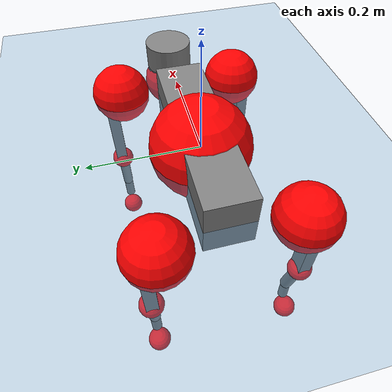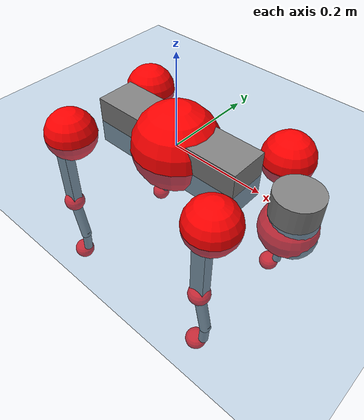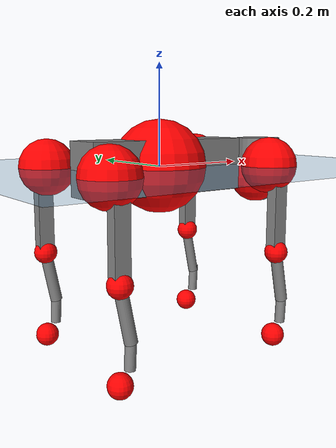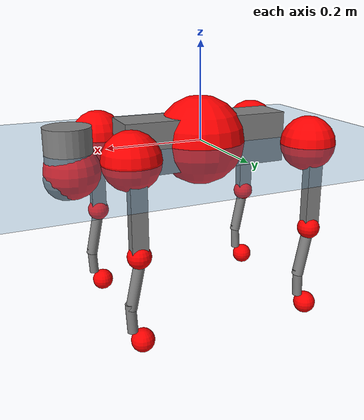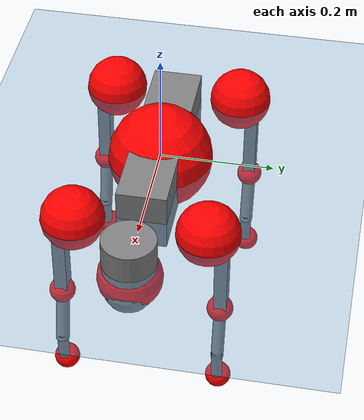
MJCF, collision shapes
<mujoco model="go2">
  <compiler angle="radian" assetdir="assets" balanceinertia="true" inertiafromgeom="false"/>

  <option timestep="0.005" density="1.2" viscosity="2e-05"/>

  <size nkey="1"/>

  <visual>
    <quality shadowsize="8192"/>
    <map shadowclip="0.5"/>
  </visual>

  <default>
    <default class="/">
      <geom contype="0" conaffinity="0" group="1" solref="-1000 -80"/>
      <site size="0.01 0.005 0.005" group="5"/>
      <general forcelimited="true" biastype="affine" gainprm="20" biasprm="0 -20 -0.5"/>
      <default class="go2">
        <joint armature="0.01" damping="0.01" frictionloss="0.2"/>
        <geom condim="1" margin="0.001"/>
        <default class="visual">
          <geom type="mesh" group="2"/>
        </default>
        <default class="collision">
          <geom group="3"/>
          <default class="foot">
            <geom size="0.022 0 0" condim="6" priority="1" friction="0.8 0.02 0.01" solimp="0.015 1 0.022"/>
          </default>
        </default>
        <default class="reward_collision_sphere">
          <geom group="5" rgba="1 0 0 1"/>
        </default>
      </default>
    </default>
  </default>

  <asset>
    <texture type="skybox" colorspace="auto" name="//unnamed_texture_0" builtin="gradient" rgb1="0.95 0.95 0.95" rgb2="0.95 0.95 0.95" width="100" height="600"/>
    <texture type="2d" colorspace="auto" name="texplane" builtin="checker" rgb1="0.345 0.575 0.748" rgb2="0.345 0.575 0.748" markrgb="1 1 1" width="512" height="512"/>
    <material name="MatPlane" class="/" texture="texplane" texuniform="true" texrepeat="2 2" specular="0.9"/>
    <material name="metal" class="/" rgba="0.9 0.95 0.95 1"/>
    <material name="black" class="/" rgba="0 0 0 1"/>
    <material name="white" class="/"/>
    <material name="gray" class="/" rgba="0.671705 0.692426 0.77427 1"/>
    <mesh name="base_0" class="/" file="base_0.obj"/>
    <mesh name="base_1" class="/" file="base_1.obj"/>
    <mesh name="base_2" class="/" file="base_2.obj"/>
    <mesh name="base_3" class="/" file="base_3.obj"/>
    <mesh name="base_4" class="/" file="base_4.obj"/>
    <mesh name="hip_0" class="/" file="hip_0.obj"/>
    <mesh name="hip_1" class="/" file="hip_1.obj"/>
    <mesh name="thigh_0" class="/" file="thigh_0.obj"/>
    <mesh name="thigh_1" class="/" file="thigh_1.obj"/>
    <mesh name="thigh_mirror_0" class="/" file="thigh_mirror_0.obj"/>
    <mesh name="thigh_mirror_1" class="/" file="thigh_mirror_1.obj"/>
    <mesh name="calf_0" class="/" file="calf_0.obj"/>
    <mesh name="calf_1" class="/" file="calf_1.obj"/>
    <mesh name="calf_mirror_0" class="/" file="calf_mirror_0.obj"/>
    <mesh name="calf_mirror_1" class="/" file="calf_mirror_1.obj"/>
    <mesh name="foot" class="/" file="foot.obj"/>
  </asset>

  <worldbody>
    <geom name="floor" class="/" size="100 100 0.125" type="plane" group="0" material="MatPlane"/>
    <light name="toplight_shadow" class="/" pos="0 0 5" dir="0.0990148 0.0990148 -0.990148" type="directional" ambient="0.04 0.04 0.04" diffuse="0.55 0.55 0.55" specular="0.12 0.12 0.12"/>
    <light name="toplight_fill" class="/" pos="0 0 5" dir="0.0990148 0.0990148 -0.990148" type="directional" castshadow="false" ambient="0.04 0.04 0.04" diffuse="0.3 0.3 0.3" specular="0.08 0.08 0.08"/>
    <body name="trunk" childclass="go2" pos="0.000155795 0.000155115 0.000520647" quat="1 -0.000170167 4.80079e-05 -3.10037e-05">
      <inertial pos="0.020124 -0.000486797 -0.00537219" quat="0.000315459 0.713527 -0.00431518 0.700614" mass="5.33268" diaginertia="0.0853506 0.0929909 0.00895638"/>
      <joint name="//unnamed_joint_0" type="free" armature="0" damping="0" frictionloss="0"/>
      <geom name="//unnamed_geom_1" class="visual" material="black" mesh="base_0"/>
      <geom name="//unnamed_geom_2" class="visual" material="black" mesh="base_1"/>
      <geom name="//unnamed_geom_3" class="visual" material="black" mesh="base_2"/>
      <geom name="//unnamed_geom_4" class="visual" material="white" mesh="base_3"/>
      <geom name="//unnamed_geom_5" class="visual" material="gray" mesh="base_4"/>
      <geom name="trunk_1" class="collision" size="0.173296 0.0430707 0.052514" type="box"/>
      <geom name="trunk_2" class="collision" size="0.0460649 0.0414584" pos="0.272789 0 0.00817948" type="cylinder"/>
      <geom name="trunk_3" class="collision" size="0.043301" pos="0.280447 0 -0.0490769"/>
      <geom name="//unnamed_geom_9" class="reward_collision_sphere" size="0.0921299"/>
      <geom name="//unnamed_geom_10" class="reward_collision_sphere" size="0.0552779" pos="0.268003 0 -0.0368077"/>
      <site name="imu" pos="-0.0315477 -0.00250124 0.0374197" size="0.00921299"/>
      <camera name="track" pos="0 -1.97759 0" quat="0.707107 0.707107 0 0" mode="trackcom"/>
      <camera name="ego_camera" pos="0.298632 0 0.0368077" quat="-0.5 -0.5 0.5 0.5"/>
      <body name="FL_hip" pos="0.185546 0.0463535 0.00196613" quat="1 0.000195927 0.000128858 -0.00012074">
        <inertial pos="-0.00436577 0.00288085 -0.000184667" quat="0.500065 0.496261 0.505061 0.498571" mass="0.527062" diaginertia="0.000704553 0.000564983 0.000175517"/>
        <joint name="FL_hip_joint" pos="0 0 0" axis="0.999983 0.00494958 -0.00307284" range="-1.05035 1.03027" armature="0.00972134" damping="0.0013021" frictionloss="0.179876"/>
        <geom name="//unnamed_geom_11" class="visual" material="metal" mesh="hip_0"/>
        <geom name="//unnamed_geom_12" class="visual" material="gray" mesh="hip_1"/>
        <geom name="//unnamed_geom_13" class="collision" size="0.0423797 0.018426" pos="0 0.0791034 0" quat="0.707107 0.707107 0 0" type="cylinder"/>
        <geom name="//unnamed_geom_14" class="reward_collision_sphere" size="0.0552779" pos="0 0.0692155 0"/>
        <body name="FL_thigh" pos="-0.000326424 0.0939964 0.00176829" quat="1 3.08967e-05 -3.3678e-05 9.98752e-05">
          <inertial pos="-0.00471741 -0.0219907 -0.0259487" quat="0.829371 0.084407 -0.0201054 0.551919" mass="0.890274" diaginertia="0.00472477 0.00551603 0.000319274"/>
          <joint name="FL_thigh_joint" pos="0 0 0" axis="-9.37442e-05 1 -0.000307466" stiffness="0.00020572" range="-1.5708 3.49294" armature="0.00943358" damping="0.00968963" frictionloss="0.178964"/>
          <geom name="//unnamed_geom_15" class="visual" material="metal" mesh="thigh_0"/>
          <geom name="//unnamed_geom_16" class="visual" material="gray" mesh="thigh_1"/>
          <geom name="//unnamed_geom_17" class="collision" size="0.0981183 0.0112859 0.0156621" pos="0 0 -0.0871115" quat="0.707107 0 0.707107 0" type="box"/>
          <body name="FL_calf" pos="-0.000877133 -0.00127965 -0.175617" quat="1 1.86076e-05 4.27074e-05 5.13939e-05">
            <inertial pos="0.00604261 -0.000482973 -0.114988" quat="0.710678 0.00140156 -0.00437477 0.703502" mass="0.191716" diaginertia="0.00121149 0.00138299 1.96095e-05"/>
            <joint name="FL_calf_joint" pos="0 0 0" axis="0.00700813 0.999961 0.00538891" stiffness="0.00263375" range="-2.71119 -0.852179" armature="0.00872852" damping="0.000759957" frictionloss="0.177473"/>
            <geom name="//unnamed_geom_18" class="visual" material="gray" mesh="calf_0"/>
            <geom name="//unnamed_geom_19" class="visual" material="black" mesh="calf_1"/>
            <geom name="FL_calf0" class="collision" size="0.0110556 0.0552779" pos="0.00765724 0 -0.0490769" quat="0.994493 0 -0.104807 0" type="cylinder"/>
            <geom name="//unnamed_geom_21" class="collision" size="0.0101343 0.0299422" pos="0.0191431 0 -0.121056" quat="0.999688 0 0.0249974 0" type="cylinder"/>
            <geom name="//unnamed_geom_22" class="visual" pos="0 0 -0.174223" quat="1 0 0 0" material="black" mesh="foot"/>
            <geom name="FL_foot" class="foot" size="0.0179126" pos="-0.00191431 0 -0.174223"/>
            <geom name="//unnamed_geom_24" class="reward_collision_sphere" size="0.0230325"/>
            <geom name="//unnamed_geom_25" class="reward_collision_sphere" size="0.0230325" pos="-0.00191431 0 -0.174223"/>
            <site name="FL_foot" class="foot" pos="-0.00191431 0 -0.174223" size="0.00921299"/>
          </body>
        </body>
      </body>
      <body name="FR_hip" pos="0.186426 -0.0454757 0.000368553" quat="1 -9.72582e-06 -5.69474e-06 3.52554e-06">
        <inertial pos="-0.00448224 -0.00210055 -0.00023401" quat="0.498154 0.505441 0.499259 0.497103" mass="0.524345" diaginertia="0.000711083 0.000551445 0.0001742"/>
        <joint name="FR_hip_joint" pos="0 0 0" axis="0.999992 0.00354003 -0.00186317" stiffness="0.00177393" range="-1.06327 1.05946" armature="0.00899913" damping="0.0169026" frictionloss="0.178721"/>
        <geom name="//unnamed_geom_26" class="visual" pos="0 1.48833e-09 6.38374e-08" quat="4.63268e-05 1 0 0" material="metal" mesh="hip_0"/>
        <geom name="//unnamed_geom_27" class="visual" pos="0 2.41275e-09 -1.57894e-07" quat="4.63268e-05 1 0 0" material="gray" mesh="hip_1"/>
        <geom name="//unnamed_geom_28" class="collision" size="0.0423797 0.018426" pos="0 -0.0791034 0" quat="0.707107 0.707107 0 0" type="cylinder"/>
        <geom name="//unnamed_geom_29" class="reward_collision_sphere" size="0.0552779" pos="0 -0.0692155 0"/>
        <body name="FR_thigh" pos="0.0012934 -0.0933177 0.000739271" quat="1 -1.70806e-07 -0.000313347 -1.82235e-06">
          <inertial pos="-0.00364653 0.0226774 -0.026838" quat="0.551018 -0.0215169 0.0861309 0.829758" mass="0.891494" diaginertia="0.00480222 0.00548188 0.000318684"/>
          <joint name="FR_thigh_joint" pos="0 0 0" axis="0.0014116 -0.999996 -0.00234363" range="-3.4646 1.55847" armature="0.00920574" damping="0.00707986" frictionloss="0.200402"/>
          <geom name="//unnamed_geom_30" class="visual" material="metal" mesh="thigh_mirror_0"/>
          <geom name="//unnamed_geom_31" class="visual" material="gray" mesh="thigh_mirror_1"/>
          <geom name="//unnamed_geom_32" class="collision" size="0.0981183 0.0112859 0.0156621" pos="0 0 -0.0871115" quat="0.707107 0 0.707107 0" type="box"/>
          <body name="FR_calf" pos="0.000505248 -0.00124915 -0.174378" quat="1 6.71501e-05 3.42761e-05 2.83502e-05">
            <inertial pos="0.00579907 0.0010296 -0.115084" quat="0.704086 -0.00670863 -0.00223689 0.71008" mass="0.187536" diaginertia="0.0011777 0.00138307 1.94043e-05"/>
            <joint name="FR_calf_joint" pos="0 0 0" axis="-0.000634465 -0.999999 -0.00143462" range="0.853404 2.71007" armature="0.00939366" damping="0.0110244" frictionloss="0.17336"/>
            <geom name="//unnamed_geom_33" class="visual" material="gray" mesh="calf_mirror_0"/>
            <geom name="//unnamed_geom_34" class="visual" material="black" mesh="calf_mirror_1"/>
            <geom name="FR_calf0" class="collision" size="0.0119769 0.0552779" pos="0.00957155 0 -0.0490769" quat="0.995004 0 -0.0998334 0" type="cylinder"/>
            <geom name="//unnamed_geom_36" class="collision" size="0.0101343 0.0299422" pos="0.0191431 0 -0.121056" quat="0.999688 0 0.0249974 0" type="cylinder"/>
            <geom name="//unnamed_geom_37" class="visual" pos="0 0 -0.174223" quat="1 0 0 0" material="black" mesh="foot"/>
            <geom name="FR_foot" class="foot" size="0.0201688" pos="-0.00191431 0 -0.174223"/>
            <geom name="//unnamed_geom_39" class="reward_collision_sphere" size="0.0230325"/>
            <geom name="//unnamed_geom_40" class="reward_collision_sphere" size="0.0230325" pos="-0.00191431 0 -0.174223"/>
            <site name="FR_foot" class="foot" pos="-0.00191431 0 -0.174223" size="0.00921299"/>
          </body>
        </body>
      </body>
      <body name="RL_hip" pos="-0.186498 0.0452595 -0.000785193" quat="1 8.7078e-06 3.74225e-06 4.90777e-05">
        <inertial pos="0.00422712 0.00314962 0.000119687" quat="0.502267 0.500097 0.496612 0.501007" mass="0.526272" diaginertia="0.000711975 0.000569704 0.000173775"/>
        <joint name="RL_hip_joint" pos="0 0 0" axis="-0.999791 -0.00571608 0.019609" stiffness="0.00175143" range="-1.06142 1.01149" armature="0.00887154" damping="0.0133432" frictionloss="0.187139"/>
        <geom name="//unnamed_geom_41" class="visual" pos="-1.21271e-09 0 -2.3772e-07" quat="4.63268e-05 0 1 0" material="metal" mesh="hip_0"/>
        <geom name="//unnamed_geom_42" class="visual" pos="-1.96595e-09 0 -2.10824e-07" quat="4.63268e-05 0 1 0" material="gray" mesh="hip_1"/>
        <geom name="//unnamed_geom_43" class="collision" size="0.0423797 0.018426" pos="0 0.0791034 0" quat="0.707107 0.707107 0 0" type="cylinder"/>
        <geom name="//unnamed_geom_44" class="reward_collision_sphere" size="0.0552779" pos="0 0.0692155 0"/>
        <body name="RL_thigh" pos="0.000743613 0.0924351 -0.00053944" quat="1 -3.21126e-05 -1.59372e-05 2.23158e-05">
          <inertial pos="-0.00337911 -0.0217171 -0.0272518" quat="0.82959 0.0848729 -0.0202284 0.551514" mass="0.901819" diaginertia="0.00477584 0.00558257 0.000320873"/>
          <joint name="RL_thigh_joint" pos="0 0 0" axis="0.00451306 0.99999 -0.00055768" range="-0.522992 4.52969" armature="0.00965295" damping="0.0103688" frictionloss="0.178842"/>
          <geom name="//unnamed_geom_45" class="visual" material="metal" mesh="thigh_0"/>
          <geom name="//unnamed_geom_46" class="visual" material="gray" mesh="thigh_1"/>
          <geom name="//unnamed_geom_47" class="collision" size="0.0981183 0.0112859 0.0156621" pos="0 0 -0.0871115" quat="0.707107 0 0.707107 0" type="box"/>
          <body name="RL_calf" pos="0.00109983 0.000543561 -0.173574" quat="1 -2.20557e-05 0.000391184 -0.000234263">
            <inertial pos="0.00589634 -0.000518445 -0.115458" quat="0.706627 -0.00395679 -0.00164811 0.707574" mass="0.189142" diaginertia="0.00119844 0.00139433 1.91525e-05"/>
            <joint name="RL_calf_joint" pos="0 0 0" axis="-0.00595791 0.999922 0.0109335" stiffness="0.00198262" range="-2.7216 -0.838357" armature="0.00928664" damping="0.0035366" frictionloss="0.178187"/>
            <geom name="//unnamed_geom_48" class="visual" material="gray" mesh="calf_0"/>
            <geom name="//unnamed_geom_49" class="visual" material="black" mesh="calf_1"/>
            <geom name="RL_calf0" class="collision" size="0.0119769 0.0552779" pos="0.00957155 0 -0.0490769" quat="0.995004 0 -0.0998334 0" type="cylinder"/>
            <geom name="//unnamed_geom_51" class="collision" size="0.0101343 0.0299422" pos="0.0191431 0 -0.121056" quat="0.999688 0 0.0249974 0" type="cylinder"/>
            <geom name="//unnamed_geom_52" class="visual" pos="0 0 -0.174223" quat="1 0 0 0" material="black" mesh="foot"/>
            <geom name="RL_foot" class="foot" size="0.0184113" pos="-0.00191431 0 -0.174223"/>
            <geom name="//unnamed_geom_54" class="reward_collision_sphere" size="0.0230325"/>
            <geom name="//unnamed_geom_55" class="reward_collision_sphere" size="0.0230325" pos="-0.00191431 0 -0.174223"/>
            <site name="RL_foot" class="foot" pos="-0.00191431 0 -0.174223" size="0.00921299"/>
          </body>
        </body>
      </body>
      <body name="RR_hip" pos="-0.18497 -0.0477697 -0.00139324" quat="1 1.03126e-05 1.03019e-05 1.04316e-05">
        <inertial pos="0.00416654 -0.00174794 0.000411619" quat="0.499302 0.496759 0.498176 0.505715" mass="0.535959" diaginertia="0.000720658 0.000570748 0.000175142"/>
        <joint name="RR_hip_joint" pos="0 0 0" axis="-1 -0.000622407 8.05114e-05" stiffness="0.0020534" range="-1.05147 1.07501" armature="0.00912908" damping="0.00464224" frictionloss="0.184773"/>
        <geom name="//unnamed_geom_56" class="visual" pos="1.21381e-09 1.48833e-09 -3.01557e-07" quat="2.14617e-09 4.63268e-05 4.63268e-05 -1" material="metal" mesh="hip_0"/>
        <geom name="//unnamed_geom_57" class="visual" pos="1.96324e-09 2.41275e-09 -5.29293e-08" quat="2.14617e-09 4.63268e-05 4.63268e-05 -1" material="gray" mesh="hip_1"/>
        <geom name="//unnamed_geom_58" class="collision" size="0.0423797 0.018426" pos="0 -0.0791034 0" quat="0.707107 0.707107 0 0" type="cylinder"/>
        <geom name="//unnamed_geom_59" class="reward_collision_sphere" size="0.0552779" pos="0 -0.0692155 0"/>
        <body name="RR_thigh" pos="0.000654559 -0.0940863 -0.000158321" quat="1 0.000106581 0.00011651 7.37598e-05">
          <inertial pos="-0.00392991 0.0218678 -0.0263241" quat="0.551732 -0.0201722 0.0848371 0.82945" mass="0.869095" diaginertia="0.00466378 0.00538951 0.000316532"/>
          <joint name="RR_thigh_joint" pos="0 0 0" axis="-0.00803068 -0.999967 0.00106442" range="-4.54398 0.523965" armature="0.00957492" damping="0.019833" frictionloss="0.186005"/>
          <geom name="//unnamed_geom_60" class="visual" material="metal" mesh="thigh_mirror_0"/>
          <geom name="//unnamed_geom_61" class="visual" material="gray" mesh="thigh_mirror_1"/>
          <geom name="//unnamed_geom_62" class="collision" size="0.0981183 0.0112859 0.0156621" pos="0 0 -0.0871115" quat="0.707107 0 0.707107 0" type="box"/>
          <body name="RR_calf" pos="-0.00010113 -0.000650084 -0.175425" quat="1 -0.000329966 -0.000447055 -7.24379e-05">
            <inertial pos="0.00665805 0.000745095 -0.116133" quat="0.702891 -0.00347914 0.00132823 0.711288" mass="0.189752" diaginertia="0.00121127 0.00138677 1.93839e-05"/>
            <joint name="RR_calf_joint" pos="0 0 0" axis="0.00275496 -0.999994 0.00220882" range="0.826808 2.731" armature="0.00866106" damping="0.00531451" frictionloss="0.183722"/>
            <geom name="//unnamed_geom_63" class="visual" material="gray" mesh="calf_mirror_0"/>
            <geom name="//unnamed_geom_64" class="visual" material="black" mesh="calf_mirror_1"/>
            <geom name="RR_calf0" class="collision" size="0.0119769 0.0552779" pos="0.00957155 0 -0.0490769" quat="0.995004 0 -0.0998334 0" type="cylinder"/>
            <geom name="//unnamed_geom_66" class="collision" size="0.0101343 0.0299422" pos="0.0191431 0 -0.121056" quat="0.999688 0 0.0249974 0" type="cylinder"/>
            <geom name="//unnamed_geom_67" class="visual" pos="0 0 -0.174223" quat="1 0 0 0" material="black" mesh="foot"/>
            <geom name="RR_foot" class="foot" size="0.0219687" pos="-0.00191431 0 -0.174223"/>
            <geom name="//unnamed_geom_69" class="reward_collision_sphere" size="0.0230325"/>
            <geom name="//unnamed_geom_70" class="reward_collision_sphere" size="0.0230325" pos="-0.00191431 0 -0.174223"/>
            <site name="RR_foot" class="foot" pos="-0.00191431 0 -0.174223" size="0.00921299"/>
          </body>
        </body>
      </body>
    </body>
  </worldbody>

  <contact>
    <pair class="/" geom1="floor" geom2="FL_foot" name="//unnamed_contact_0"/>
    <pair class="/" geom1="floor" geom2="FR_foot" name="//unnamed_contact_1"/>
    <pair class="/" geom1="floor" geom2="RL_foot" name="//unnamed_contact_2"/>
    <pair class="/" geom1="floor" geom2="RR_foot" name="//unnamed_contact_3"/>
  </contact>

  <actuator>
    <general name="FL_hip" class="/" joint="FL_hip_joint" forcerange="-21.3831 21.3831" gainprm="18.628" biasprm="0 -18.628 -0.464982"/>
    <general name="FL_thigh" class="/" joint="FL_thigh_joint" forcerange="-22.609 22.609" gainprm="18.628" biasprm="0 -18.628 -0.464982"/>
    <general name="FL_calf" class="/" joint="FL_calf_joint" forcerange="-41.4969 41.4969" gainprm="18.628" biasprm="0 -18.628 -0.464982"/>
    <general name="FR_hip" class="/" joint="FR_hip_joint" forcerange="-22.4549 22.4549" gainprm="18.628" biasprm="0 -18.628 -0.464982"/>
    <general name="FR_thigh" class="/" joint="FR_thigh_joint" forcerange="-21.0101 21.0101" gainprm="18.628" biasprm="0 -18.628 -0.464982"/>
    <general name="FR_calf" class="/" joint="FR_calf_joint" forcerange="-40.9125 40.9125" gainprm="18.628" biasprm="0 -18.628 -0.464982"/>
    <general name="RL_hip" class="/" joint="RL_hip_joint" forcerange="-21.8105 21.8105" gainprm="18.628" biasprm="0 -18.628 -0.464982"/>
    <general name="RL_thigh" class="/" joint="RL_thigh_joint" forcerange="-21.3752 21.3752" gainprm="18.628" biasprm="0 -18.628 -0.464982"/>
    <general name="RL_calf" class="/" joint="RL_calf_joint" forcerange="-41.4169 41.4169" gainprm="18.628" biasprm="0 -18.628 -0.464982"/>
    <general name="RR_hip" class="/" joint="RR_hip_joint" forcerange="-22.3036 22.3036" gainprm="18.628" biasprm="0 -18.628 -0.464982"/>
    <general name="RR_thigh" class="/" joint="RR_thigh_joint" forcerange="-20.8638 20.8638" gainprm="18.628" biasprm="0 -18.628 -0.464982"/>
    <general name="RR_calf" class="/" joint="RR_calf_joint" forcerange="-42.6971 42.6971" gainprm="18.628" biasprm="0 -18.628 -0.464982"/>
  </actuator>

  <sensor>
    <gyro site="imu" name="imu_angular_velocity"/>
    <velocimeter site="imu" name="imu_linear_velocity"/>
    <framelinvel objtype="site" objname="FL_foot" name="FL_foot_global_linear_velocity"/>
    <framelinvel objtype="site" objname="FR_foot" name="FR_foot_global_linear_velocity"/>
    <framelinvel objtype="site" objname="RL_foot" name="RL_foot_global_linear_velocity"/>
    <framelinvel objtype="site" objname="RR_foot" name="RR_foot_global_linear_velocity"/>
  </sensor>

  <keyframe>
    <key name="home" qpos="0 0 0.325 1 0 0 0 0.1 0.8 -1.5 -0.1 -0.8 1.5 -0.1 0.8 -1.5 0.1 -0.8 1.5"/>
  </keyframe>
</mujoco>
